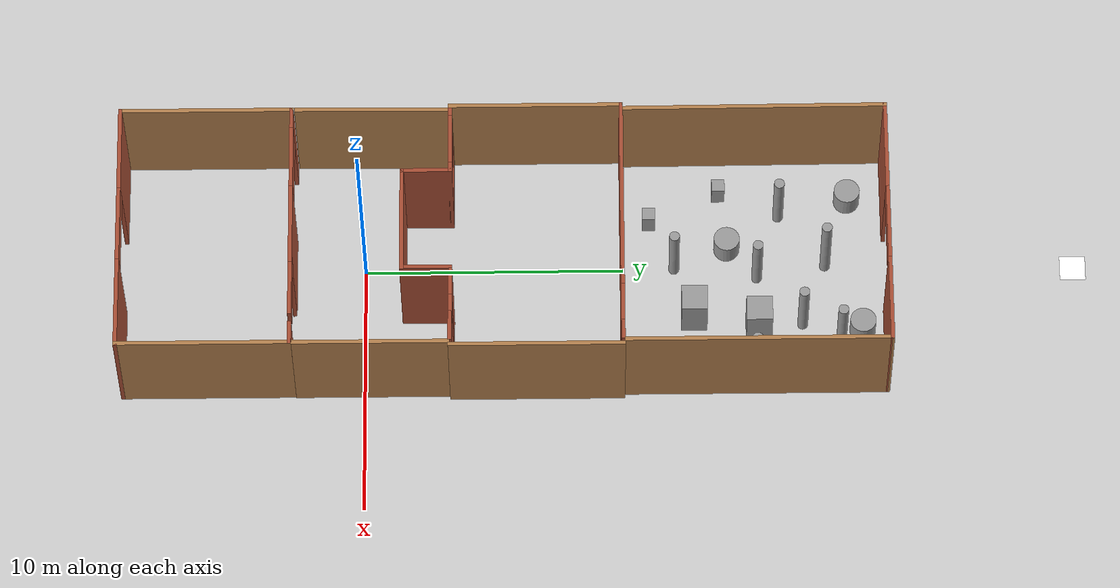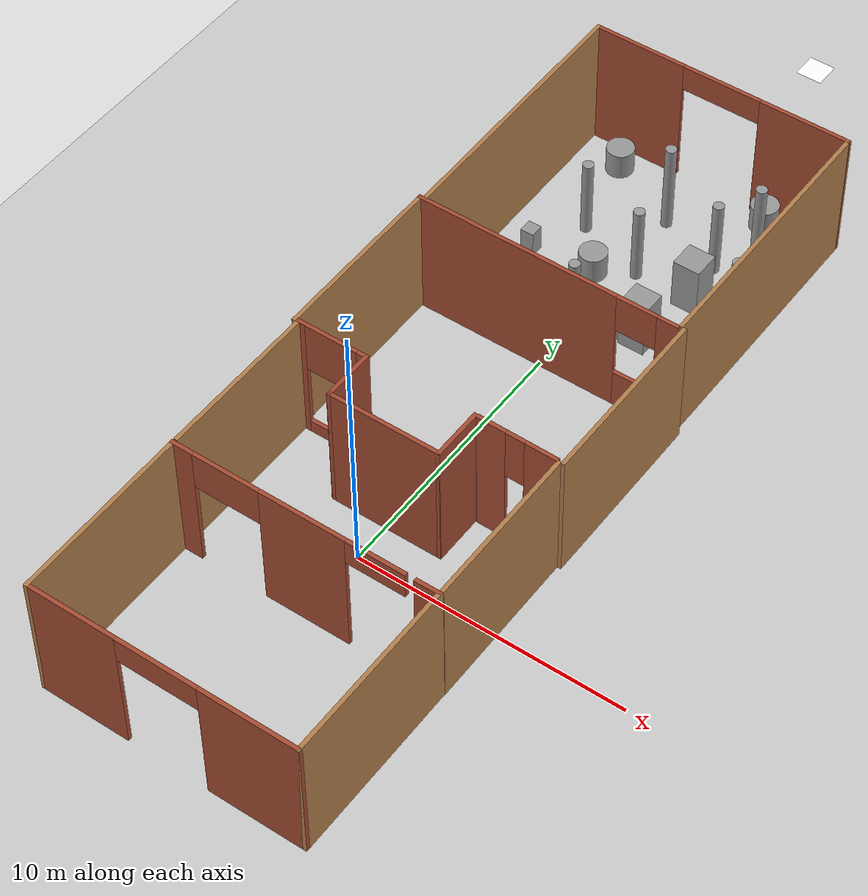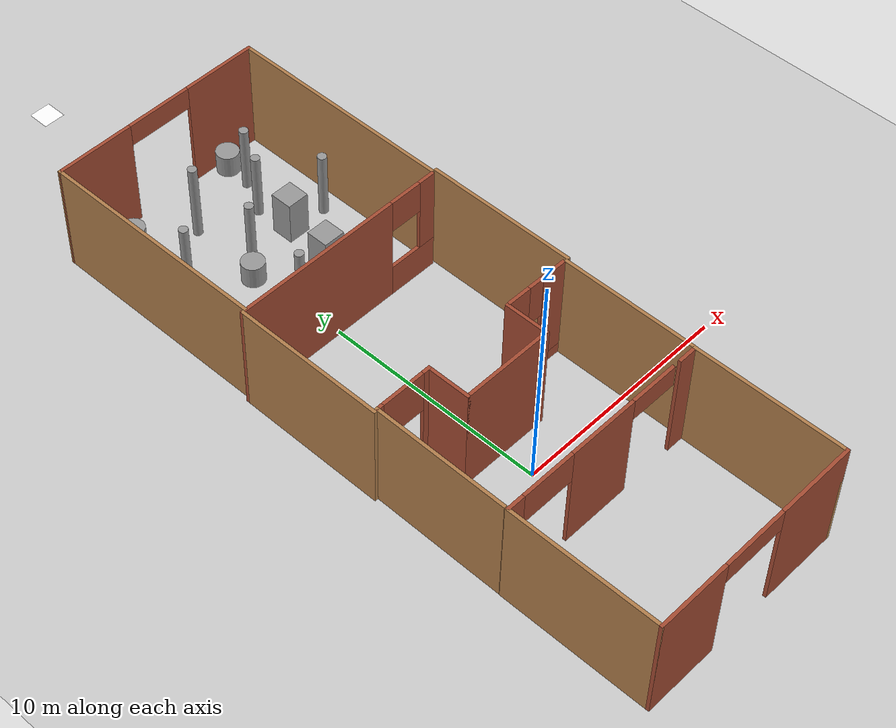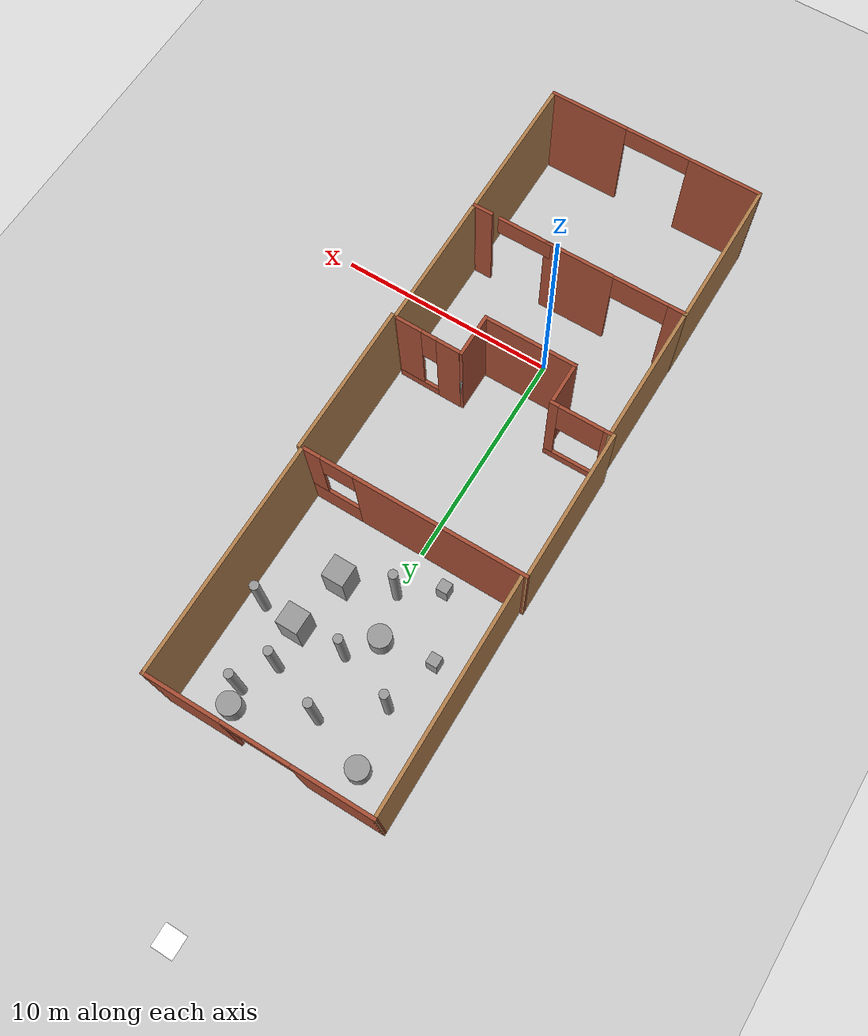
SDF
<sdf version="1.6">
 <world name="default">
  <light name="sun" type="directional">
   <pose>0 0 10 0 -0 0</pose>
   <diffuse>0.8 0.8 0.8 1</diffuse>
   <specular>0.2 0.2 0.2 1</specular>
   <attenuation>
    <range>1000</range>
    <constant>0.9</constant>
    <linear>0.01</linear>
    <quadratic>0.001</quadratic>
   </attenuation>
   <direction>-0.5 0.1 -0.9</direction>
  </light>
  <model name="ground_plane">
   <static>1</static>
   <link name="link">
    <collision name="collision">
     <geometry><plane><normal>0 0 1</normal><size>100 100</size></plane></geometry>
     <surface><friction><ode><mu>100</mu><mu2>50</mu2></ode></friction></surface>
    </collision>
    <visual name="visual">
     <cast_shadows>0</cast_shadows>
     <geometry><plane><normal>0 0 1</normal><size>100 100</size></plane></geometry>
     <material>
      <script><uri>file://media/materials/scripts/gazebo.material</uri><name>Gazebo/Grey</name></script>
     </material>
    </visual>
   </link>
  </model>
  <gravity>0 0 -9.8</gravity>
  <magnetic_field>6e-06 2.3e-05 -4.2e-05</magnetic_field>
  <atmosphere type="adiabatic"/>
  <physics name="default_physics" default="0" type="ode">
   <max_step_size>0.001</max_step_size>
   <real_time_factor>1</real_time_factor>
   <real_time_update_rate>1000</real_time_update_rate>
  </physics>
  <scene><ambient>0.4 0.4 0.4 1</ambient><background>0.7 0.7 0.7 1</background><shadows>1</shadows></scene>
  <spherical_coordinates>
   <surface_model>EARTH_WGS84</surface_model>
   <latitude_deg>0</latitude_deg>
   <longitude_deg>0</longitude_deg>
   <elevation>0</elevation>
   <heading_deg>0</heading_deg>
  </spherical_coordinates>
  <model name="world3_p1">
   <pose>0.259495 -6.03374 0 0 -0 0</pose>
   <link name="Wall_19">
    <pose>0 -3.3 0 0 -0 0</pose>
    <visual name="Wall_19_Visual_0">
     <pose>-3.31607 0 2.5 0 -0 0</pose>
     <geometry><box><size>3.36787 0.15 5</size></box></geometry>
     <material>
      <script><uri>file://media/materials/scripts/gazebo.material</uri><name>Gazebo/Bricks</name></script>
      <ambient>1 1 1 1</ambient>
     </material>
     <meta><layer>0</layer></meta>
    </visual>
    <collision name="Wall_19_Collision_0">
     <geometry><box><size>3.36787 0.15 5</size></box></geometry>
     <pose>-3.31607 0 2.5 0 -0 0</pose>
    </collision>
    <visual name="Wall_19_Visual_1">
     <pose>3.18393 0 2.5 0 -0 0</pose>
     <geometry><box><size>3.63213 0.15 5</size></box></geometry>
     <material>
      <script><uri>file://media/materials/scripts/gazebo.material</uri><name>Gazebo/Bricks</name></script>
      <ambient>1 1 1 1</ambient>
     </material>
     <meta><layer>0</layer></meta>
    </visual>
    <collision name="Wall_19_Collision_1">
     <geometry><box><size>3.63213 0.15 5</size></box></geometry>
     <pose>3.18393 0 2.5 0 -0 0</pose>
    </collision>
    <visual name="Wall_19_Visual_2">
     <pose>-0.132131 0 4.5 0 -0 0</pose>
     <geometry><box><size>3 0.15 1</size></box></geometry>
     <material>
      <script><uri>file://media/materials/scripts/gazebo.material</uri><name>Gazebo/Bricks</name></script>
      <ambient>1 1 1 1</ambient>
     </material>
     <meta><layer>0</layer></meta>
    </visual>
    <collision name="Wall_19_Collision_2">
     <geometry><box><size>3 0.15 1</size></box></geometry>
     <pose>-0.132131 0 4.5 0 -0 0</pose>
    </collision>
   </link>
   <link name="Wall_21">
    <collision name="Wall_21_Collision">
     <geometry><box><size>6.75 0.15 5</size></box></geometry>
     <pose>0 0 2.5 0 -0 0</pose>
    </collision>
    <visual name="Wall_21_Visual">
     <pose>0 0 2.5 0 -0 0</pose>
     <geometry><box><size>6.75 0.15 5</size></box></geometry>
     <material>
      <script><uri>file://media/materials/scripts/gazebo.material</uri><name>Gazebo/Wood</name></script>
      <ambient>1 1 1 1</ambient>
     </material>
     <meta><layer>0</layer></meta>
    </visual>
    <pose>-4.925 0 0 0 -0 1.5708</pose>
   </link>
   <link name="Wall_23">
    <pose>0 3.3 0 0 -0 0</pose>
    <visual name="Wall_23_Visual_0">
     <pose>-4.57524 0 2.5 0 -0 0</pose>
     <geometry><box><size>0.849509 0.15 5</size></box></geometry>
     <material>
      <script><uri>file://media/materials/scripts/gazebo.material</uri><name>Gazebo/Bricks</name></script>
      <ambient>1 1 1 1</ambient>
     </material>
     <meta><layer>0</layer></meta>
    </visual>
    <collision name="Wall_23_Collision_0">
     <geometry><box><size>0.849509 0.15 5</size></box></geometry>
     <pose>-4.57524 0 2.5 0 -0 0</pose>
    </collision>
    <visual name="Wall_23_Visual_1">
     <pose>-0.051011 0 2.5 0 -0 0</pose>
     <geometry><box><size>3.19896 0.15 5</size></box></geometry>
     <material>
      <script><uri>file://media/materials/scripts/gazebo.material</uri><name>Gazebo/Bricks</name></script>
      <ambient>1 1 1 1</ambient>
     </material>
     <meta><layer>0</layer></meta>
    </visual>
    <collision name="Wall_23_Collision_1">
     <geometry><box><size>3.19896 0.15 5</size></box></geometry>
     <pose>-0.051011 0 2.5 0 -0 0</pose>
    </collision>
    <visual name="Wall_23_Visual_2">
     <pose>4.52423 0 2.5 0 -0 0</pose>
     <geometry><box><size>0.951531 0.15 5</size></box></geometry>
     <material>
      <script><uri>file://media/materials/scripts/gazebo.material</uri><name>Gazebo/Bricks</name></script>
      <ambient>1 1 1 1</ambient>
     </material>
     <meta><layer>0</layer></meta>
    </visual>
    <collision name="Wall_23_Collision_2">
     <geometry><box><size>0.951531 0.15 5</size></box></geometry>
     <pose>4.52423 0 2.5 0 -0 0</pose>
    </collision>
    <visual name="Wall_23_Visual_3">
     <pose>-2.90049 0 4.25 0 -0 0</pose>
     <geometry><box><size>2.5 0.15 1.5</size></box></geometry>
     <material>
      <script><uri>file://media/materials/scripts/gazebo.material</uri><name>Gazebo/Bricks</name></script>
      <ambient>1 1 1 1</ambient>
     </material>
     <meta><layer>0</layer></meta>
    </visual>
    <collision name="Wall_23_Collision_3">
     <geometry><box><size>2.5 0.15 1.5</size></box></geometry>
     <pose>-2.90049 0 4.25 0 -0 0</pose>
    </collision>
    <visual name="Wall_23_Visual_4">
     <pose>2.5 0 4.5 0 -0 0</pose>
     <geometry><box><size>2.5 0.15 1</size></box></geometry>
     <material>
      <script><uri>file://media/materials/scripts/gazebo.material</uri><name>Gazebo/Bricks</name></script>
      <ambient>1 1 1 1</ambient>
     </material>
     <meta><layer>0</layer></meta>
    </visual>
    <collision name="Wall_23_Collision_4">
     <geometry><box><size>2.5 0.15 1</size></box></geometry>
     <pose>2.4 0 4.5 0 -0 0</pose>
    </collision>
   </link>
   <link name="Wall_25">
    <collision name="Wall_25_Collision">
     <geometry><box><size>6.75 0.15 5</size></box></geometry>
     <pose>0 0 2.5 0 -0 0</pose>
    </collision>
    <visual name="Wall_25_Visual">
     <pose>0 0 2.5 0 -0 0</pose>
     <geometry><box><size>6.75 0.15 5</size></box></geometry>
     <material>
      <script><uri>file://media/materials/scripts/gazebo.material</uri><name>Gazebo/Wood</name></script>
      <ambient>1 1 1 1</ambient>
     </material>
     <meta><layer>0</layer></meta>
    </visual>
    <pose>4.925 0 0 0 -0 -1.5708</pose>
   </link>
   <static>1</static>
  </model>
  <model name="world3_p5">
   <pose>0.272739 0.404561 0 0 -0 0</pose>
   <link name="Wall_0">
    <pose>-3.58788 2.96768 0 0 -0 0</pose>
    <visual name="Wall_0_Visual_0">
     <pose>-1.2025 0 2.5 0 -0 0</pose>
     <geometry><box><size>0.345 0.15 5</size></box></geometry>
     <material>
      <script><uri>file://media/materials/scripts/gazebo.material</uri><name>Gazebo/Bricks</name></script>
      <ambient>1 1 1 1</ambient>
     </material>
     <meta><layer>0</layer></meta>
    </visual>
    <collision name="Wall_0_Collision_0">
     <geometry><box><size>0.345 0.15 5</size></box></geometry>
     <pose>-1.2025 0 2.5 0 -0 0</pose>
    </collision>
    <visual name="Wall_0_Visual_1">
     <pose>0.1725 0 0.25 0 -0 0</pose>
     <geometry><box><size>2.405 0.15 0.5</size></box></geometry>
     <material>
      <script><uri>file://media/materials/scripts/gazebo.material</uri><name>Gazebo/Bricks</name></script>
      <ambient>1 1 1 1</ambient>
     </material>
     <meta><layer>0</layer></meta>
    </visual>
    <collision name="Wall_0_Collision_1">
     <geometry><box><size>2.405 0.15 0.5</size></box></geometry>
     <pose>0.1725 0 0.25 0 -0 0</pose>
    </collision>
    <visual name="Wall_0_Visual_2">
     <pose>1.1725 0 2.75 0 -0 0</pose>
     <geometry><box><size>0.405 0.15 4.5</size></box></geometry>
     <material>
      <script><uri>file://media/materials/scripts/gazebo.material</uri><name>Gazebo/Bricks</name></script>
      <ambient>1 1 1 1</ambient>
     </material>
     <meta><layer>0</layer></meta>
    </visual>
    <collision name="Wall_0_Collision_2">
     <geometry><box><size>0.405 0.15 4.5</size></box></geometry>
     <pose>1.1725 0 2.75 0 -0 0</pose>
    </collision>
    <visual name="Wall_0_Visual_3">
     <pose>-0.03 0 4 0 -0 0</pose>
     <geometry><box><size>2 0.15 2</size></box></geometry>
     <material>
      <script><uri>file://media/materials/scripts/gazebo.material</uri><name>Gazebo/Bricks</name></script>
      <ambient>1 1 1 1</ambient>
     </material>
     <meta><layer>0</layer></meta>
    </visual>
    <collision name="Wall_0_Collision_3">
     <geometry><box><size>2 0.15 2</size></box></geometry>
     <pose>-0.03 0 4 0 -0 0</pose>
    </collision>
   </link>
   <link name="Wall_10">
    <collision name="Wall_10_Collision">
     <geometry><box><size>6.07003 0.15 5</size></box></geometry>
     <pose>0 0 2.5 0 -0 0</pose>
    </collision>
    <visual name="Wall_10_Visual">
     <pose>0 0 2.5 0 -0 0</pose>
     <geometry><box><size>6.07003 0.15 5</size></box></geometry>
     <material>
      <script><uri>file://media/materials/scripts/gazebo.material</uri><name>Gazebo/Wood</name></script>
      <ambient>1 1 1 1</ambient>
     </material>
     <meta><layer>0</layer></meta>
    </visual>
    <pose>-4.90638 0.008176 0 0 -0 -1.57705</pose>
   </link>
   <link name="Wall_12">
    <collision name="Wall_12_Collision">
     <geometry><box><size>2 0.15 5</size></box></geometry>
     <pose>0 0 2.5 0 -0 0</pose>
    </collision>
    <visual name="Wall_12_Visual">
     <pose>0 0 2.5 0 -0 0</pose>
     <geometry><box><size>2 0.15 5</size></box></geometry>
     <material>
      <script><uri>file://media/materials/scripts/gazebo.material</uri><name>Gazebo/Bricks</name></script>
      <ambient>1 1 1 1</ambient>
     </material>
     <meta><layer>0</layer></meta>
    </visual>
    <pose>-2.28788 2.04268 0 0 -0 -1.5708</pose>
   </link>
   <link name="Wall_13">
    <collision name="Wall_13_Collision">
     <geometry><box><size>4.25 0.15 5</size></box></geometry>
     <pose>0 0 2.5 0 -0 0</pose>
    </collision>
    <visual name="Wall_13_Visual">
     <pose>0 0 2.5 0 -0 0</pose>
     <geometry><box><size>4.25 0.15 5</size></box></geometry>
     <material>
      <script><uri>file://media/materials/scripts/gazebo.material</uri><name>Gazebo/Bricks</name></script>
      <ambient>1 1 1 1</ambient>
     </material>
     <meta><layer>0</layer></meta>
    </visual>
    <pose>-0.237882 1.11768 0 0 -0 0</pose>
   </link>
   <link name="Wall_16">
    <collision name="Wall_16_Collision">
     <geometry><box><size>2 0.15 5</size></box></geometry>
     <pose>0 0 2.5 0 -0 0</pose>
    </collision>
    <visual name="Wall_16_Visual">
     <pose>0 0 2.5 0 -0 0</pose>
     <geometry><box><size>2 0.15 5</size></box></geometry>
     <material>
      <script><uri>file://media/materials/scripts/gazebo.material</uri><name>Gazebo/Bricks</name></script>
      <ambient>1 1 1 1</ambient>
     </material>
     <meta><layer>0</layer></meta>
    </visual>
    <pose>1.81212 2.04268 0 0 -0 1.5708</pose>
   </link>
   <link name="Wall_17">
    <collision name="Wall_17_Collision">
     <geometry><box><size>0.16 0.15 2.5</size></box></geometry>
     <pose>0 0 1.25 0 -0 0</pose>
    </collision>
    <visual name="Wall_17_Visual">
     <pose>0 0 1.25 0 -0 0</pose>
     <geometry><box><size>0.16 0.15 2.5</size></box></geometry>
     <material>
      <script><uri>file://media/materials/scripts/gazebo.material</uri><name>Gazebo/Grey</name></script>
      <ambient>1 1 1 1</ambient>
     </material>
     <meta><layer>0</layer></meta>
    </visual>
    <pose>1.81712 2.96768 0 0 -0 0</pose>
   </link>
   <link name="Wall_2">
    <pose>3.37312 2.96818 0 0 -0 -0.01228</pose>
    <visual name="Wall_2_Visual_0">
     <pose>-0.952502 0 2.5 0 -0 0</pose>
     <geometry><box><size>1.095 0.15 5</size></box></geometry>
     <material>
      <script><uri>file://media/materials/scripts/gazebo.material</uri><name>Gazebo/Bricks</name></script>
      <ambient>1 1 1 1</ambient>
     </material>
     <meta><layer>0</layer></meta>
    </visual>
    <collision name="Wall_2_Collision_0">
     <geometry><box><size>1.095 0.15 5</size></box></geometry>
     <pose>-0.952502 0 2.5 0 -0 0</pose>
    </collision>
    <visual name="Wall_2_Visual_1">
     <pose>0.547498 0 0.25 0 -0 0</pose>
     <geometry><box><size>1.905 0.15 0.5</size></box></geometry>
     <material>
      <script><uri>file://media/materials/scripts/gazebo.material</uri><name>Gazebo/Bricks</name></script>
      <ambient>1 1 1 1</ambient>
     </material>
     <meta><layer>0</layer></meta>
    </visual>
    <collision name="Wall_2_Collision_1">
     <geometry><box><size>1.905 0.15 0.5</size></box></geometry>
     <pose>0.547498 0 0.25 0 -0 0</pose>
    </collision>
    <visual name="Wall_2_Visual_2">
     <pose>0.897498 0 2.75 0 -0 0</pose>
     <geometry><box><size>1.205 0.15 4.5</size></box></geometry>
     <material>
      <script><uri>file://media/materials/scripts/gazebo.material</uri><name>Gazebo/Bricks</name></script>
      <ambient>1 1 1 1</ambient>
     </material>
     <meta><layer>0</layer></meta>
    </visual>
    <collision name="Wall_2_Collision_2">
     <geometry><box><size>1.205 0.15 4.5</size></box></geometry>
     <pose>0.897498 0 2.75 0 -0 0</pose>
    </collision>
    <visual name="Wall_2_Visual_3">
     <pose>-0.055004 0 4 0 -0 0</pose>
     <geometry><box><size>0.7 0.15 2</size></box></geometry>
     <material>
      <script><uri>file://media/materials/scripts/gazebo.material</uri><name>Gazebo/Bricks</name></script>
      <ambient>1 1 1 1</ambient>
     </material>
     <meta><layer>0</layer></meta>
    </visual>
    <collision name="Wall_2_Collision_3">
     <geometry><box><size>0.7 0.15 2</size></box></geometry>
     <pose>-0.055004 0 4 0 -0 0</pose>
    </collision>
   </link>
   <link name="Wall_21">
    <collision name="Wall_21_Collision">
     <geometry><box><size>6 0.15 5</size></box></geometry>
     <pose>0 0 2.5 0 -0 0</pose>
    </collision>
    <visual name="Wall_21_Visual">
     <pose>0 0 2.5 0 -0 0</pose>
     <geometry><box><size>6 0.15 5</size></box></geometry>
     <material>
      <script><uri>file://media/materials/scripts/gazebo.material</uri><name>Gazebo/Wood</name></script>
      <ambient>1 1 1 1</ambient>
     </material>
     <meta><layer>0</layer></meta>
    </visual>
    <pose>4.92512 -0.061324 0 0 -0 1.5708</pose>
   </link>
   <static>1</static>
  </model>
  <model name="world3_p3_0">
   <pose>0.255822 15.1032 0 0 -0 0</pose>
   <link name="Wall_0">
    <pose>0.000122 5.06704 0 0 -0 0.003046</pose>
    <visual name="Wall_0_Visual_0">
     <pose>-3.21998 0 2.5 0 -0 0</pose>
     <geometry><box><size>3.56005 0.15 5</size></box></geometry>
     <material>
      <script><uri>file://media/materials/scripts/gazebo.material</uri><name>Gazebo/Bricks</name></script>
      <ambient>1 1 1 1</ambient>
     </material>
     <meta><layer>0</layer></meta>
    </visual>
    <collision name="Wall_0_Collision_0">
     <geometry><box><size>3.56005 0.15 5</size></box></geometry>
     <pose>-3.21998 0 2.5 0 -0 0</pose>
    </collision>
    <visual name="Wall_0_Visual_1">
     <pose>3.28002 0 2.5 0 -0 0</pose>
     <geometry><box><size>3.43995 0.15 5</size></box></geometry>
     <material>
      <script><uri>file://media/materials/scripts/gazebo.material</uri><name>Gazebo/Bricks</name></script>
      <ambient>1 1 1 1</ambient>
     </material>
     <meta><layer>0</layer></meta>
    </visual>
    <collision name="Wall_0_Collision_1">
     <geometry><box><size>3.43995 0.15 5</size></box></geometry>
     <pose>3.28002 0 2.5 0 -0 0</pose>
    </collision>
    <visual name="Wall_0_Visual_2">
     <pose>0.060047 0 4.5 0 -0 0</pose>
     <geometry><box><size>3 0.15 1</size></box></geometry>
     <material>
      <script><uri>file://media/materials/scripts/gazebo.material</uri><name>Gazebo/Bricks</name></script>
      <ambient>1 1 1 1</ambient>
     </material>
     <meta><layer>0</layer></meta>
    </visual>
    <collision name="Wall_0_Collision_2">
     <geometry><box><size>3 0.15 1</size></box></geometry>
     <pose>0.060047 0 4.5 0 -0 0</pose>
    </collision>
   </link>
   <link name="Wall_2">
    <collision name="Wall_2_Collision">
     <geometry><box><size>10.2839 0.15 5</size></box></geometry>
     <pose>0 0 2.5 0 -0 0</pose>
    </collision>
    <visual name="Wall_2_Visual">
     <pose>0 0 2.5 0 -0 0</pose>
     <geometry><box><size>10.2839 0.15 5</size></box></geometry>
     <material>
      <script><uri>file://media/materials/scripts/gazebo.material</uri><name>Gazebo/Wood</name></script>
      <ambient>1 1 1 1</ambient>
     </material>
     <meta><layer>0</layer></meta>
    </visual>
    <pose>-4.89438 -0.014961 0 0 -0 -1.56478</pose>
   </link>
   <link name="Wall_4">
    <collision name="Wall_4_Collision">
     <geometry><box><size>10.25 0.15 5</size></box></geometry>
     <pose>0 0 2.5 0 -0 0</pose>
    </collision>
    <visual name="Wall_4_Visual">
     <pose>0 0 2.5 0 -0 0</pose>
     <geometry><box><size>10.25 0.15 5</size></box></geometry>
     <material>
      <script><uri>file://media/materials/scripts/gazebo.material</uri><name>Gazebo/Wood</name></script>
      <ambient>1 1 1 1</ambient>
     </material>
     <meta><layer>0</layer></meta>
    </visual>
    <pose>4.92512 0.032039 0 0 -0 -1.5708</pose>
   </link>
   <static>1</static>
  </model>
  <model name="world3_p4">
   <pose>0.283802 6.66317 0 0 -0 0</pose>
   <link name="Wall_0">
    <pose>-0.125004 3.3 0 0 -0 3.3e-05</pose>
    <visual name="Wall_0_Visual_0">
     <pose>-1.14518 0 2.5 0 -0 0</pose>
     <geometry><box><size>7.70964 0.15 5</size></box></geometry>
     <material>
      <script><uri>file://media/materials/scripts/gazebo.material</uri><name>Gazebo/Bricks</name></script>
      <ambient>1 1 1 1</ambient>
     </material>
     <meta><layer>0</layer></meta>
    </visual>
    <collision name="Wall_0_Collision_0">
     <geometry><box><size>7.70964 0.15 5</size></box></geometry>
     <pose>-1.14518 0 2.5 0 -0 0</pose>
    </collision>
    <visual name="Wall_0_Visual_1">
     <pose>3.85482 0 0.75 0 -0 0</pose>
     <geometry><box><size>2.29036 0.15 1.5</size></box></geometry>
     <material>
      <script><uri>file://media/materials/scripts/gazebo.material</uri><name>Gazebo/Bricks</name></script>
      <ambient>1 1 1 1</ambient>
     </material>
     <meta><layer>0</layer></meta>
    </visual>
    <collision name="Wall_0_Collision_1">
     <geometry><box><size>2.29036 0.15 1.5</size></box></geometry>
     <pose>3.85482 0 0.75 0 -0 0</pose>
    </collision>
    <visual name="Wall_0_Visual_2">
     <pose>4.60482 0 3.25 0 -0 0</pose>
     <geometry><box><size>0.790358 0.15 3.5</size></box></geometry>
     <material>
      <script><uri>file://media/materials/scripts/gazebo.material</uri><name>Gazebo/Bricks</name></script>
      <ambient>1 1 1 1</ambient>
     </material>
     <meta><layer>0</layer></meta>
    </visual>
    <collision name="Wall_0_Collision_2">
     <geometry><box><size>0.790358 0.15 3.5</size></box></geometry>
     <pose>4.60482 0 3.25 0 -0 0</pose>
    </collision>
    <visual name="Wall_0_Visual_3">
     <pose>3.45964 0 4.25 0 -0 0</pose>
     <geometry><box><size>1.5 0.15 1.5</size></box></geometry>
     <material>
      <script><uri>file://media/materials/scripts/gazebo.material</uri><name>Gazebo/Bricks</name></script>
      <ambient>1 1 1 1</ambient>
     </material>
     <meta><layer>0</layer></meta>
    </visual>
    <collision name="Wall_0_Collision_3">
     <geometry><box><size>1.5 0.15 1.5</size></box></geometry>
     <pose>3.45964 0 4.25 0 -0 0</pose>
    </collision>
   </link>
   <link name="Wall_3">
    <collision name="Wall_3_Collision">
     <geometry><box><size>6.75 0.15 5</size></box></geometry>
     <pose>0 0 2.5 0 -0 0</pose>
    </collision>
    <visual name="Wall_3_Visual">
     <pose>0 0 2.5 0 -0 0</pose>
     <geometry><box><size>6.75 0.15 5</size></box></geometry>
     <material>
      <script><uri>file://media/materials/scripts/gazebo.material</uri><name>Gazebo/Wood</name></script>
      <ambient>1 1 1 1</ambient>
     </material>
     <meta><layer>0</layer></meta>
    </visual>
    <pose>-5.04999 -0.000163 0 0 -0 -1.5708</pose>
   </link>
   <link name="Wall_5">
    <collision name="Wall_5_Collision">
     <geometry><box><size>6.75 0.15 5</size></box></geometry>
     <pose>0 0 2.5 0 -0 0</pose>
    </collision>
    <visual name="Wall_5_Visual">
     <pose>0 0 2.5 0 -0 0</pose>
     <geometry><box><size>6.75 0.15 5</size></box></geometry>
     <material>
      <script><uri>file://media/materials/scripts/gazebo.material</uri><name>Gazebo/Wood</name></script>
      <ambient>1 1 1 1</ambient>
     </material>
     <meta><layer>0</layer></meta>
    </visual>
    <pose>5.05001 -0.000163 0 0 -0 1.5708</pose>
   </link>
   <static>1</static>
  </model>
  <model name="world3_models">
   <link name="link_0">
    <inertial>
     <mass>1</mass>
     <inertia>
      <ixx>0.166667</ixx>
      <ixy>0</ixy>
      <ixz>0</ixz>
      <iyy>0.166667</iyy>
      <iyz>0</iyz>
      <izz>0.166667</izz>
     </inertia>
    </inertial>
    <pose>2.03762 -0.209703 0 0 -0 0</pose>
    <visual name="visual">
     <geometry><box><size>1 1 2</size></box></geometry>
     <material>
      <lighting>1</lighting>
      <script><uri>file://media/materials/scripts/gazebo.material</uri><name>Gazebo/Grey</name></script>
      <shader type="pixel"><normal_map>__default__</normal_map></shader>
      <ambient>0.3 0.3 0.3 1</ambient>
      <diffuse>0.7 0.7 0.7 1</diffuse>
      <specular>0.01 0.01 0.01 1</specular>
      <emissive>0 0 0 1</emissive>
     </material>
    </visual>
    <collision name="collision">
     <geometry><box><size>1 1 2</size></box></geometry>
     <surface>
      <friction>
       <ode><mu>1</mu><mu2>1</mu2><fdir1>0 0 0</fdir1><slip1>0</slip1><slip2>0</slip2></ode>
       <torsional>
        <coefficient>1</coefficient>
        <patch_radius>0</patch_radius>
        <surface_radius>0</surface_radius>
        <use_patch_radius>1</use_patch_radius>
        <ode><slip>0</slip></ode>
       </torsional>
      </friction>
      <bounce><restitution_coefficient>0</restitution_coefficient><threshold>1e+06</threshold></bounce>
      <contact>
       <collide_without_contact>0</collide_without_contact>
       <collide_without_contact_bitmask>1</collide_without_contact_bitmask>
       <collide_bitmask>1</collide_bitmask>
       <ode>
        <soft_cfm>0</soft_cfm>
        <soft_erp>0.2</soft_erp>
        <kp>1e+13</kp>
        <kd>1</kd>
        <max_vel>0.01</max_vel>
        <min_depth>0</min_depth>
       </ode>
       <bullet>
        <split_impulse>1</split_impulse>
        <split_impulse_penetration_threshold>-0.01</split_impulse_penetration_threshold>
        <soft_cfm>0</soft_cfm>
        <soft_erp>0.2</soft_erp>
        <kp>1e+13</kp>
        <kd>1</kd>
       </bullet>
      </contact>
     </surface>
    </collision>
   </link>
   <link name="link_0_clone">
    <inertial>
     <mass>1</mass>
     <inertia>
      <ixx>0.166667</ixx>
      <ixy>0</ixy>
      <ixz>0</ixz>
      <iyy>0.166667</iyy>
      <iyz>0</iyz>
      <izz>0.166667</izz>
     </inertia>
    </inertial>
    <pose>1.56831 -2.71554 0 0 -0 0</pose>
    <visual name="visual">
     <geometry><box><size>1 1 2</size></box></geometry>
     <material>
      <lighting>1</lighting>
      <script><uri>file://media/materials/scripts/gazebo.material</uri><name>Gazebo/Grey</name></script>
      <shader type="pixel"><normal_map>__default__</normal_map></shader>
      <ambient>0.3 0.3 0.3 1</ambient>
      <diffuse>0.7 0.7 0.7 1</diffuse>
      <specular>0.01 0.01 0.01 1</specular>
      <emissive>0 0 0 1</emissive>
     </material>
    </visual>
    <collision name="collision">
     <geometry><box><size>1 1 2</size></box></geometry>
     <surface>
      <friction>
       <ode><mu>1</mu><mu2>1</mu2><fdir1>0 0 0</fdir1><slip1>0</slip1><slip2>0</slip2></ode>
       <torsional>
        <coefficient>1</coefficient>
        <patch_radius>0</patch_radius>
        <surface_radius>0</surface_radius>
        <use_patch_radius>1</use_patch_radius>
        <ode><slip>0</slip></ode>
       </torsional>
      </friction>
      <bounce><restitution_coefficient>0</restitution_coefficient><threshold>1e+06</threshold></bounce>
      <contact>
       <collide_without_contact>0</collide_without_contact>
       <collide_without_contact_bitmask>1</collide_without_contact_bitmask>
       <collide_bitmask>1</collide_bitmask>
       <ode>
        <soft_cfm>0</soft_cfm>
        <soft_erp>0.2</soft_erp>
        <kp>1e+13</kp>
        <kd>1</kd>
        <max_vel>0.01</max_vel>
        <min_depth>0</min_depth>
       </ode>
       <bullet>
        <split_impulse>1</split_impulse>
        <split_impulse_penetration_threshold>-0.01</split_impulse_penetration_threshold>
        <soft_cfm>0</soft_cfm>
        <soft_erp>0.2</soft_erp>
        <kp>1e+13</kp>
        <kd>1</kd>
       </bullet>
      </contact>
     </surface>
    </collision>
   </link>
   <link name="link_1">
    <inertial>
     <mass>1</mass>
     <inertia><ixx>0.145833</ixx><ixy>0</ixy><ixz>0</ixz><iyy>0.145833</iyy><iyz>0</iyz><izz>0.125</izz></inertia>
    </inertial>
    <pose>2.36446 3.79032 0 0 -0 0</pose>
    <visual name="visual">
     <geometry><cylinder><radius>0.5</radius><length>1</length></cylinder></geometry>
     <material>
      <lighting>1</lighting>
      <script><uri>file://media/materials/scripts/gazebo.material</uri><name>Gazebo/Grey</name></script>
      <shader type="pixel"/>
     </material>
    </visual>
    <collision name="collision">
     <geometry><cylinder><radius>0.5</radius><length>1</length></cylinder></geometry>
     <surface>
      <friction>
       <ode><mu>1</mu><mu2>1</mu2><fdir1>0 0 0</fdir1><slip1>0</slip1><slip2>0</slip2></ode>
       <torsional>
        <coefficient>1</coefficient>
        <patch_radius>0</patch_radius>
        <surface_radius>0</surface_radius>
        <use_patch_radius>1</use_patch_radius>
        <ode><slip>0</slip></ode>
       </torsional>
      </friction>
      <bounce><restitution_coefficient>0</restitution_coefficient><threshold>1e+06</threshold></bounce>
      <contact>
       <collide_without_contact>0</collide_without_contact>
       <collide_without_contact_bitmask>1</collide_without_contact_bitmask>
       <collide_bitmask>1</collide_bitmask>
       <ode>
        <soft_cfm>0</soft_cfm>
        <soft_erp>0.2</soft_erp>
        <kp>1e+13</kp>
        <kd>1</kd>
        <max_vel>0.01</max_vel>
        <min_depth>0</min_depth>
       </ode>
       <bullet>
        <split_impulse>1</split_impulse>
        <split_impulse_penetration_threshold>-0.01</split_impulse_penetration_threshold>
        <soft_cfm>0</soft_cfm>
        <soft_erp>0.2</soft_erp>
        <kp>1e+13</kp>
        <kd>1</kd>
       </bullet>
      </contact>
     </surface>
    </collision>
   </link>
   <link name="link_2">
    <inertial>
     <mass>1</mass>
     <inertia>
      <ixx>0.166667</ixx>
      <ixy>0</ixy>
      <ixz>0</ixz>
      <iyy>0.166667</iyy>
      <iyz>0</iyz>
      <izz>0.166667</izz>
     </inertia>
    </inertial>
    <pose>-3.46569 -1.7273 0 0 -0 0</pose>
    <visual name="visual">
     <geometry><box><size>0.5 0.5 1</size></box></geometry>
     <material>
      <lighting>1</lighting>
      <script><uri>file://media/materials/scripts/gazebo.material</uri><name>Gazebo/Grey</name></script>
      <shader type="pixel"><normal_map>__default__</normal_map></shader>
      <ambient>0.3 0.3 0.3 1</ambient>
      <diffuse>0.7 0.7 0.7 1</diffuse>
      <specular>0.01 0.01 0.01 1</specular>
      <emissive>0 0 0 1</emissive>
     </material>
    </visual>
    <collision name="collision">
     <geometry><box><size>0.5 0.5 1</size></box></geometry>
     <surface>
      <friction>
       <ode><mu>1</mu><mu2>1</mu2><fdir1>0 0 0</fdir1><slip1>0</slip1><slip2>0</slip2></ode>
       <torsional>
        <coefficient>1</coefficient>
        <patch_radius>0</patch_radius>
        <surface_radius>0</surface_radius>
        <use_patch_radius>1</use_patch_radius>
        <ode><slip>0</slip></ode>
       </torsional>
      </friction>
      <bounce><restitution_coefficient>0</restitution_coefficient><threshold>1e+06</threshold></bounce>
      <contact>
       <collide_without_contact>0</collide_without_contact>
       <collide_without_contact_bitmask>1</collide_without_contact_bitmask>
       <collide_bitmask>1</collide_bitmask>
       <ode>
        <soft_cfm>0</soft_cfm>
        <soft_erp>0.2</soft_erp>
        <kp>1e+13</kp>
        <kd>1</kd>
        <max_vel>0.01</max_vel>
        <min_depth>0</min_depth>
       </ode>
       <bullet>
        <split_impulse>1</split_impulse>
        <split_impulse_penetration_threshold>-0.01</split_impulse_penetration_threshold>
        <soft_cfm>0</soft_cfm>
        <soft_erp>0.2</soft_erp>
        <kp>1e+13</kp>
        <kd>1</kd>
       </bullet>
      </contact>
     </surface>
    </collision>
   </link>
   <link name="link_2_clone">
    <inertial>
     <mass>1</mass>
     <inertia>
      <ixx>0.166667</ixx>
      <ixy>0</ixy>
      <ixz>0</ixz>
      <iyy>0.166667</iyy>
      <iyz>0</iyz>
      <izz>0.166667</izz>
     </inertia>
    </inertial>
    <pose>-2.24781 -4.44688 0 0 -0 0</pose>
    <visual name="visual">
     <geometry><box><size>0.5 0.5 1</size></box></geometry>
     <material>
      <lighting>1</lighting>
      <script><uri>file://media/materials/scripts/gazebo.material</uri><name>Gazebo/Grey</name></script>
      <shader type="pixel"><normal_map>__default__</normal_map></shader>
      <ambient>0.3 0.3 0.3 1</ambient>
      <diffuse>0.7 0.7 0.7 1</diffuse>
      <specular>0.01 0.01 0.01 1</specular>
      <emissive>0 0 0 1</emissive>
     </material>
    </visual>
    <collision name="collision">
     <geometry><box><size>0.5 0.5 1</size></box></geometry>
     <surface>
      <friction>
       <ode><mu>1</mu><mu2>1</mu2><fdir1>0 0 0</fdir1><slip1>0</slip1><slip2>0</slip2></ode>
       <torsional>
        <coefficient>1</coefficient>
        <patch_radius>0</patch_radius>
        <surface_radius>0</surface_radius>
        <use_patch_radius>1</use_patch_radius>
        <ode><slip>0</slip></ode>
       </torsional>
      </friction>
      <bounce><restitution_coefficient>0</restitution_coefficient><threshold>1e+06</threshold></bounce>
      <contact>
       <collide_without_contact>0</collide_without_contact>
       <collide_without_contact_bitmask>1</collide_without_contact_bitmask>
       <collide_bitmask>1</collide_bitmask>
       <ode>
        <soft_cfm>0</soft_cfm>
        <soft_erp>0.2</soft_erp>
        <kp>1e+13</kp>
        <kd>1</kd>
        <max_vel>0.01</max_vel>
        <min_depth>0</min_depth>
       </ode>
       <bullet>
        <split_impulse>1</split_impulse>
        <split_impulse_penetration_threshold>-0.01</split_impulse_penetration_threshold>
        <soft_cfm>0</soft_cfm>
        <soft_erp>0.2</soft_erp>
        <kp>1e+13</kp>
        <kd>1</kd>
       </bullet>
      </contact>
     </surface>
    </collision>
   </link>
   <link name="link_3">
    <inertial>
     <mass>1</mass>
     <inertia><ixx>0.145833</ixx><ixy>0</ixy><ixz>0</ixz><iyy>0.145833</iyy><iyz>0</iyz><izz>0.125</izz></inertia>
    </inertial>
    <pose>-0.643323 2.40713 0 0 -0 0</pose>
    <visual name="visual">
     <geometry><cylinder><radius>0.2</radius><length>5</length></cylinder></geometry>
     <material>
      <lighting>1</lighting>
      <script><uri>file://media/materials/scripts/gazebo.material</uri><name>Gazebo/Grey</name></script>
      <shader type="pixel"><normal_map>__default__</normal_map></shader>
      <ambient>0.3 0.3 0.3 1</ambient>
      <diffuse>0.7 0.7 0.7 1</diffuse>
      <specular>0.01 0.01 0.01 1</specular>
      <emissive>0 0 0 1</emissive>
     </material>
    </visual>
    <collision name="collision">
     <geometry><cylinder><radius>0.2</radius><length>5</length></cylinder></geometry>
     <surface>
      <friction>
       <ode><mu>1</mu><mu2>1</mu2><fdir1>0 0 0</fdir1><slip1>0</slip1><slip2>0</slip2></ode>
       <torsional>
        <coefficient>1</coefficient>
        <patch_radius>0</patch_radius>
        <surface_radius>0</surface_radius>
        <use_patch_radius>1</use_patch_radius>
        <ode><slip>0</slip></ode>
       </torsional>
      </friction>
      <bounce><restitution_coefficient>0</restitution_coefficient><threshold>1e+06</threshold></bounce>
      <contact>
       <collide_without_contact>0</collide_without_contact>
       <collide_without_contact_bitmask>1</collide_without_contact_bitmask>
       <collide_bitmask>1</collide_bitmask>
       <ode>
        <soft_cfm>0</soft_cfm>
        <soft_erp>0.2</soft_erp>
        <kp>1e+13</kp>
        <kd>1</kd>
        <max_vel>0.01</max_vel>
        <min_depth>0</min_depth>
       </ode>
       <bullet>
        <split_impulse>1</split_impulse>
        <split_impulse_penetration_threshold>-0.01</split_impulse_penetration_threshold>
        <soft_cfm>0</soft_cfm>
        <soft_erp>0.2</soft_erp>
        <kp>1e+13</kp>
        <kd>1</kd>
       </bullet>
      </contact>
     </surface>
    </collision>
   </link>
   <link name="link_4">
    <inertial>
     <mass>1</mass>
     <inertia><ixx>0.145833</ixx><ixy>0</ixy><ixz>0</ixz><iyy>0.145833</iyy><iyz>0</iyz><izz>0.125</izz></inertia>
    </inertial>
    <pose>1.84352 1.49813 0 0 -0 0</pose>
    <visual name="visual">
     <geometry><cylinder><radius>0.2</radius><length>4</length></cylinder></geometry>
     <material>
      <lighting>1</lighting>
      <script><uri>file://media/materials/scripts/gazebo.material</uri><name>Gazebo/Grey</name></script>
      <shader type="pixel"><normal_map>__default__</normal_map></shader>
      <ambient>0.3 0.3 0.3 1</ambient>
      <diffuse>0.7 0.7 0.7 1</diffuse>
      <specular>0.01 0.01 0.01 1</specular>
      <emissive>0 0 0 1</emissive>
     </material>
    </visual>
    <collision name="collision">
     <geometry><cylinder><radius>0.2</radius><length>4</length></cylinder></geometry>
     <surface>
      <friction>
       <ode><mu>1</mu><mu2>1</mu2><fdir1>0 0 0</fdir1><slip1>0</slip1><slip2>0</slip2></ode>
       <torsional>
        <coefficient>1</coefficient>
        <patch_radius>0</patch_radius>
        <surface_radius>0</surface_radius>
        <use_patch_radius>1</use_patch_radius>
        <ode><slip>0</slip></ode>
       </torsional>
      </friction>
      <bounce><restitution_coefficient>0</restitution_coefficient><threshold>1e+06</threshold></bounce>
      <contact>
       <collide_without_contact>0</collide_without_contact>
       <collide_without_contact_bitmask>1</collide_without_contact_bitmask>
       <collide_bitmask>1</collide_bitmask>
       <ode>
        <soft_cfm>0</soft_cfm>
        <soft_erp>0.2</soft_erp>
        <kp>1e+13</kp>
        <kd>1</kd>
        <max_vel>0.01</max_vel>
        <min_depth>0</min_depth>
       </ode>
       <bullet>
        <split_impulse>1</split_impulse>
        <split_impulse_penetration_threshold>-0.01</split_impulse_penetration_threshold>
        <soft_cfm>0</soft_cfm>
        <soft_erp>0.2</soft_erp>
        <kp>1e+13</kp>
        <kd>1</kd>
       </bullet>
      </contact>
     </surface>
    </collision>
   </link>
   <link name="link_4_clone">
    <inertial>
     <mass>1</mass>
     <inertia><ixx>0.145833</ixx><ixy>0</ixy><ixz>0</ixz><iyy>0.145833</iyy><iyz>0</iyz><izz>0.125</izz></inertia>
    </inertial>
    <pose>3.74918 -0.332965 0 0 -0 0</pose>
    <visual name="visual">
     <geometry><cylinder><radius>0.2</radius><length>4</length></cylinder></geometry>
     <material>
      <lighting>1</lighting>
      <script><uri>file://media/materials/scripts/gazebo.material</uri><name>Gazebo/Grey</name></script>
      <shader type="pixel"><normal_map>__default__</normal_map></shader>
      <ambient>0.3 0.3 0.3 1</ambient>
      <diffuse>0.7 0.7 0.7 1</diffuse>
      <specular>0.01 0.01 0.01 1</specular>
      <emissive>0 0 0 1</emissive>
     </material>
    </visual>
    <collision name="collision">
     <geometry><cylinder><radius>0.2</radius><length>4</length></cylinder></geometry>
     <surface>
      <friction>
       <ode><mu>1</mu><mu2>1</mu2><fdir1>0 0 0</fdir1><slip1>0</slip1><slip2>0</slip2></ode>
       <torsional>
        <coefficient>1</coefficient>
        <patch_radius>0</patch_radius>
        <surface_radius>0</surface_radius>
        <use_patch_radius>1</use_patch_radius>
        <ode><slip>0</slip></ode>
       </torsional>
      </friction>
      <bounce><restitution_coefficient>0</restitution_coefficient><threshold>1e+06</threshold></bounce>
      <contact>
       <collide_without_contact>0</collide_without_contact>
       <collide_without_contact_bitmask>1</collide_without_contact_bitmask>
       <collide_bitmask>1</collide_bitmask>
       <ode>
        <soft_cfm>0</soft_cfm>
        <soft_erp>0.2</soft_erp>
        <kp>1e+13</kp>
        <kd>1</kd>
        <max_vel>0.01</max_vel>
        <min_depth>0</min_depth>
       </ode>
       <bullet>
        <split_impulse>1</split_impulse>
        <split_impulse_penetration_threshold>-0.01</split_impulse_penetration_threshold>
        <soft_cfm>0</soft_cfm>
        <soft_erp>0.2</soft_erp>
        <kp>1e+13</kp>
        <kd>1</kd>
       </bullet>
      </contact>
     </surface>
    </collision>
   </link>
   <link name="link_4_clone_0">
    <inertial>
     <mass>1</mass>
     <inertia><ixx>0.145833</ixx><ixy>0</ixy><ixz>0</ixz><iyy>0.145833</iyy><iyz>0</iyz><izz>0.125</izz></inertia>
    </inertial>
    <pose>-0.153038 -0.252231 0 0 -0 0</pose>
    <visual name="visual">
     <geometry><cylinder><radius>0.2</radius><length>4</length></cylinder></geometry>
     <material>
      <lighting>1</lighting>
      <script><uri>file://media/materials/scripts/gazebo.material</uri><name>Gazebo/Grey</name></script>
      <shader type="pixel"><normal_map>__default__</normal_map></shader>
      <ambient>0.3 0.3 0.3 1</ambient>
      <diffuse>0.7 0.7 0.7 1</diffuse>
      <specular>0.01 0.01 0.01 1</specular>
      <emissive>0 0 0 1</emissive>
     </material>
    </visual>
    <collision name="collision">
     <geometry><cylinder><radius>0.2</radius><length>4</length></cylinder></geometry>
     <surface>
      <friction>
       <ode><mu>1</mu><mu2>1</mu2><fdir1>0 0 0</fdir1><slip1>0</slip1><slip2>0</slip2></ode>
       <torsional>
        <coefficient>1</coefficient>
        <patch_radius>0</patch_radius>
        <surface_radius>0</surface_radius>
        <use_patch_radius>1</use_patch_radius>
        <ode><slip>0</slip></ode>
       </torsional>
      </friction>
      <bounce><restitution_coefficient>0</restitution_coefficient><threshold>1e+06</threshold></bounce>
      <contact>
       <collide_without_contact>0</collide_without_contact>
       <collide_without_contact_bitmask>1</collide_without_contact_bitmask>
       <collide_bitmask>1</collide_bitmask>
       <ode>
        <soft_cfm>0</soft_cfm>
        <soft_erp>0.2</soft_erp>
        <kp>1e+13</kp>
        <kd>1</kd>
        <max_vel>0.01</max_vel>
        <min_depth>0</min_depth>
       </ode>
       <bullet>
        <split_impulse>1</split_impulse>
        <split_impulse_penetration_threshold>-0.01</split_impulse_penetration_threshold>
        <soft_cfm>0</soft_cfm>
        <soft_erp>0.2</soft_erp>
        <kp>1e+13</kp>
        <kd>1</kd>
       </bullet>
      </contact>
     </surface>
    </collision>
   </link>
   <link name="link_4_clone_1">
    <inertial>
     <mass>1</mass>
     <inertia><ixx>0.145833</ixx><ixy>0</ixy><ixz>0</ixz><iyy>0.145833</iyy><iyz>0</iyz><izz>0.125</izz></inertia>
    </inertial>
    <pose>-2.77777 0.619177 0 0 -0 0</pose>
    <visual name="visual">
     <geometry><cylinder><radius>0.2</radius><length>4</length></cylinder></geometry>
     <material>
      <lighting>1</lighting>
      <script><uri>file://media/materials/scripts/gazebo.material</uri><name>Gazebo/Grey</name></script>
      <shader type="pixel"><normal_map>__default__</normal_map></shader>
      <ambient>0.3 0.3 0.3 1</ambient>
      <diffuse>0.7 0.7 0.7 1</diffuse>
      <specular>0.01 0.01 0.01 1</specular>
      <emissive>0 0 0 1</emissive>
     </material>
    </visual>
    <collision name="collision">
     <geometry><cylinder><radius>0.2</radius><length>4</length></cylinder></geometry>
     <surface>
      <friction>
       <ode><mu>1</mu><mu2>1</mu2><fdir1>0 0 0</fdir1><slip1>0</slip1><slip2>0</slip2></ode>
       <torsional>
        <coefficient>1</coefficient>
        <patch_radius>0</patch_radius>
        <surface_radius>0</surface_radius>
        <use_patch_radius>1</use_patch_radius>
        <ode><slip>0</slip></ode>
       </torsional>
      </friction>
      <bounce><restitution_coefficient>0</restitution_coefficient><threshold>1e+06</threshold></bounce>
      <contact>
       <collide_without_contact>0</collide_without_contact>
       <collide_without_contact_bitmask>1</collide_without_contact_bitmask>
       <collide_bitmask>1</collide_bitmask>
       <ode>
        <soft_cfm>0</soft_cfm>
        <soft_erp>0.2</soft_erp>
        <kp>1e+13</kp>
        <kd>1</kd>
        <max_vel>0.01</max_vel>
        <min_depth>0</min_depth>
       </ode>
       <bullet>
        <split_impulse>1</split_impulse>
        <split_impulse_penetration_threshold>-0.01</split_impulse_penetration_threshold>
        <soft_cfm>0</soft_cfm>
        <soft_erp>0.2</soft_erp>
        <kp>1e+13</kp>
        <kd>1</kd>
       </bullet>
      </contact>
     </surface>
    </collision>
   </link>
   <link name="link_4_clone_2">
    <inertial>
     <mass>1</mass>
     <inertia><ixx>0.145833</ixx><ixy>0</ixy><ixz>0</ixz><iyy>0.145833</iyy><iyz>0</iyz><izz>0.125</izz></inertia>
    </inertial>
    <pose>-0.559921 -3.47003 0 0 -0 0</pose>
    <visual name="visual">
     <geometry><cylinder><radius>0.2</radius><length>4</length></cylinder></geometry>
     <material>
      <lighting>1</lighting>
      <script><uri>file://media/materials/scripts/gazebo.material</uri><name>Gazebo/Grey</name></script>
      <shader type="pixel"><normal_map>__default__</normal_map></shader>
      <ambient>0.3 0.3 0.3 1</ambient>
      <diffuse>0.7 0.7 0.7 1</diffuse>
      <specular>0.01 0.01 0.01 1</specular>
      <emissive>0 0 0 1</emissive>
     </material>
    </visual>
    <collision name="collision">
     <geometry><cylinder><radius>0.2</radius><length>4</length></cylinder></geometry>
     <surface>
      <friction>
       <ode><mu>1</mu><mu2>1</mu2><fdir1>0 0 0</fdir1><slip1>0</slip1><slip2>0</slip2></ode>
       <torsional>
        <coefficient>1</coefficient>
        <patch_radius>0</patch_radius>
        <surface_radius>0</surface_radius>
        <use_patch_radius>1</use_patch_radius>
        <ode><slip>0</slip></ode>
       </torsional>
      </friction>
      <bounce><restitution_coefficient>0</restitution_coefficient><threshold>1e+06</threshold></bounce>
      <contact>
       <collide_without_contact>0</collide_without_contact>
       <collide_without_contact_bitmask>1</collide_without_contact_bitmask>
       <collide_bitmask>1</collide_bitmask>
       <ode>
        <soft_cfm>0</soft_cfm>
        <soft_erp>0.2</soft_erp>
        <kp>1e+13</kp>
        <kd>1</kd>
        <max_vel>0.01</max_vel>
        <min_depth>0</min_depth>
       </ode>
       <bullet>
        <split_impulse>1</split_impulse>
        <split_impulse_penetration_threshold>-0.01</split_impulse_penetration_threshold>
        <soft_cfm>0</soft_cfm>
        <soft_erp>0.2</soft_erp>
        <kp>1e+13</kp>
        <kd>1</kd>
       </bullet>
      </contact>
     </surface>
    </collision>
   </link>
   <link name="link_4_clone_3">
    <inertial>
     <mass>1</mass>
     <inertia><ixx>0.145833</ixx><ixy>0</ixy><ixz>0</ixz><iyy>0.145833</iyy><iyz>0</iyz><izz>0.125</izz></inertia>
    </inertial>
    <pose>2.60597 2.97966 0 0 -0 0</pose>
    <visual name="visual">
     <geometry><cylinder><radius>0.2</radius><length>4</length></cylinder></geometry>
     <material>
      <lighting>1</lighting>
      <script><uri>file://media/materials/scripts/gazebo.material</uri><name>Gazebo/Grey</name></script>
      <shader type="pixel"><normal_map>__default__</normal_map></shader>
      <ambient>0.3 0.3 0.3 1</ambient>
      <diffuse>0.7 0.7 0.7 1</diffuse>
      <specular>0.01 0.01 0.01 1</specular>
      <emissive>0 0 0 1</emissive>
     </material>
    </visual>
    <collision name="collision">
     <geometry><cylinder><radius>0.2</radius><length>4</length></cylinder></geometry>
     <surface>
      <friction>
       <ode><mu>1</mu><mu2>1</mu2><fdir1>0 0 0</fdir1><slip1>0</slip1><slip2>0</slip2></ode>
       <torsional>
        <coefficient>1</coefficient>
        <patch_radius>0</patch_radius>
        <surface_radius>0</surface_radius>
        <use_patch_radius>1</use_patch_radius>
        <ode><slip>0</slip></ode>
       </torsional>
      </friction>
      <bounce><restitution_coefficient>0</restitution_coefficient><threshold>1e+06</threshold></bounce>
      <contact>
       <collide_without_contact>0</collide_without_contact>
       <collide_without_contact_bitmask>1</collide_without_contact_bitmask>
       <collide_bitmask>1</collide_bitmask>
       <ode>
        <soft_cfm>0</soft_cfm>
        <soft_erp>0.2</soft_erp>
        <kp>1e+13</kp>
        <kd>1</kd>
        <max_vel>0.01</max_vel>
        <min_depth>0</min_depth>
       </ode>
       <bullet>
        <split_impulse>1</split_impulse>
        <split_impulse_penetration_threshold>-0.01</split_impulse_penetration_threshold>
        <soft_cfm>0</soft_cfm>
        <soft_erp>0.2</soft_erp>
        <kp>1e+13</kp>
        <kd>1</kd>
       </bullet>
      </contact>
     </surface>
    </collision>
   </link>
   <link name="link_5">
    <inertial>
     <mass>1</mass>
     <inertia><ixx>0.145833</ixx><ixy>0</ixy><ixz>0</ixz><iyy>0.145833</iyy><iyz>0</iyz><izz>0.125</izz></inertia>
    </inertial>
    <pose>-3.17226 3.28552 0 0 -0 0</pose>
    <visual name="visual">
     <geometry><cylinder><radius>0.5</radius><length>1</length></cylinder></geometry>
     <material>
      <lighting>1</lighting>
      <script><uri>file://media/materials/scripts/gazebo.material</uri><name>Gazebo/Grey</name></script>
      <shader type="pixel"/>
     </material>
    </visual>
    <collision name="collision">
     <geometry><cylinder><radius>0.5</radius><length>1</length></cylinder></geometry>
     <surface>
      <friction>
       <ode><mu>1</mu><mu2>1</mu2><fdir1>0 0 0</fdir1><slip1>0</slip1><slip2>0</slip2></ode>
       <torsional>
        <coefficient>1</coefficient>
        <patch_radius>0</patch_radius>
        <surface_radius>0</surface_radius>
        <use_patch_radius>1</use_patch_radius>
        <ode><slip>0</slip></ode>
       </torsional>
      </friction>
      <bounce><restitution_coefficient>0</restitution_coefficient><threshold>1e+06</threshold></bounce>
      <contact>
       <collide_without_contact>0</collide_without_contact>
       <collide_without_contact_bitmask>1</collide_without_contact_bitmask>
       <collide_bitmask>1</collide_bitmask>
       <ode>
        <soft_cfm>0</soft_cfm>
        <soft_erp>0.2</soft_erp>
        <kp>1e+13</kp>
        <kd>1</kd>
        <max_vel>0.01</max_vel>
        <min_depth>0</min_depth>
       </ode>
       <bullet>
        <split_impulse>1</split_impulse>
        <split_impulse_penetration_threshold>-0.01</split_impulse_penetration_threshold>
        <soft_cfm>0</soft_cfm>
        <soft_erp>0.2</soft_erp>
        <kp>1e+13</kp>
        <kd>1</kd>
       </bullet>
      </contact>
     </surface>
    </collision>
   </link>
   <link name="link_6">
    <inertial>
     <mass>1</mass>
     <inertia><ixx>0.145833</ixx><ixy>0</ixy><ixz>0</ixz><iyy>0.145833</iyy><iyz>0</iyz><izz>0.125</izz></inertia>
    </inertial>
    <pose>-1.14924 -1.42531 0 0 -0 0</pose>
    <visual name="visual">
     <geometry><cylinder><radius>0.5</radius><length>1</length></cylinder></geometry>
     <material>
      <lighting>1</lighting>
      <script><uri>file://media/materials/scripts/gazebo.material</uri><name>Gazebo/Grey</name></script>
      <shader type="pixel"/>
     </material>
    </visual>
    <collision name="collision">
     <geometry><cylinder><radius>0.5</radius><length>1</length></cylinder></geometry>
     <surface>
      <friction>
       <ode><mu>1</mu><mu2>1</mu2><fdir1>0 0 0</fdir1><slip1>0</slip1><slip2>0</slip2></ode>
       <torsional>
        <coefficient>1</coefficient>
        <patch_radius>0</patch_radius>
        <surface_radius>0</surface_radius>
        <use_patch_radius>1</use_patch_radius>
        <ode><slip>0</slip></ode>
       </torsional>
      </friction>
      <bounce><restitution_coefficient>0</restitution_coefficient><threshold>1e+06</threshold></bounce>
      <contact>
       <collide_without_contact>0</collide_without_contact>
       <collide_without_contact_bitmask>1</collide_without_contact_bitmask>
       <collide_bitmask>1</collide_bitmask>
       <ode>
        <soft_cfm>0</soft_cfm>
        <soft_erp>0.2</soft_erp>
        <kp>1e+13</kp>
        <kd>1</kd>
        <max_vel>0.01</max_vel>
        <min_depth>0</min_depth>
       </ode>
       <bullet>
        <split_impulse>1</split_impulse>
        <split_impulse_penetration_threshold>-0.01</split_impulse_penetration_threshold>
        <soft_cfm>0</soft_cfm>
        <soft_erp>0.2</soft_erp>
        <kp>1e+13</kp>
        <kd>1</kd>
       </bullet>
      </contact>
     </surface>
    </collision>
   </link>
   <static>0</static>
   <pose>0.49551 15.4625 1 -3e-06 2e-06 -0.000321</pose>
  </model>
  <model name="aruco_visual_marker_0">
   <link name="marker">
    <visual name="visual">
     <geometry><box><size>1 1 1e-05</size></box></geometry>
     <material>
      <script>
       <uri>model://aruco_visual_marker_0/materials/scripts</uri>
       <uri>model://aruco_visual_marker_0/materials/textures</uri>
       <name>ArucoVisualMarker0/Marker</name>
      </script>
      <ambient>1 1 1 1</ambient>
      <diffuse>1 1 1 1</diffuse>
      <specular>0 0 0 1</specular>
      <emissive>1 1 1 0</emissive>
      <shader type="vertex"><normal_map>__default__</normal_map></shader>
     </material>
    </visual>
    <collision name="collision"><geometry><box><size>0.1778 0.1778 1e-05</size></box></geometry></collision>
   </link>
   <link name="marker_pad">
    <pose frame="marker">0 0 -1e-05 0 -0 0</pose>
    <visual name="visual">
     <geometry><box><size>0.1778 0.1778 1e-05</size></box></geometry>
     <material>
      <lighting>1</lighting>
      <script><uri>file://media/materials/scripts/gazebo.material</uri><name>Gazebo/White</name></script>
      <ambient>0.3 0.3 0.3 1</ambient>
      <diffuse>0.7 0.7 0.7 1</diffuse>
      <specular>0.01 0.01 0.01 1</specular>
      <emissive>1 1 1 0</emissive>
      <shader type="vertex"><normal_map>__default__</normal_map></shader>
     </material>
    </visual>
    <collision name="collision"><geometry><box><size>0.1778 0.1778 1e-05</size></box></geometry></collision>
   </link>
   <joint name="marker_JOINT_marker_pad" type="revolute">
    <parent>marker</parent>
    <child>marker_pad</child>
    <axis>
     <xyz>0 0 1</xyz>
     <limit><upper>0</upper><lower>0</lower></limit>
     <use_parent_model_frame>0</use_parent_model_frame>
     <dynamics><spring_reference>0</spring_reference><spring_stiffness>0</spring_stiffness></dynamics>
    </axis>
   </joint>
   <static>1</static>
   <pose>0.031746 27.5241 0 0 -0 0</pose>
  </model>
 </world>
</sdf>
